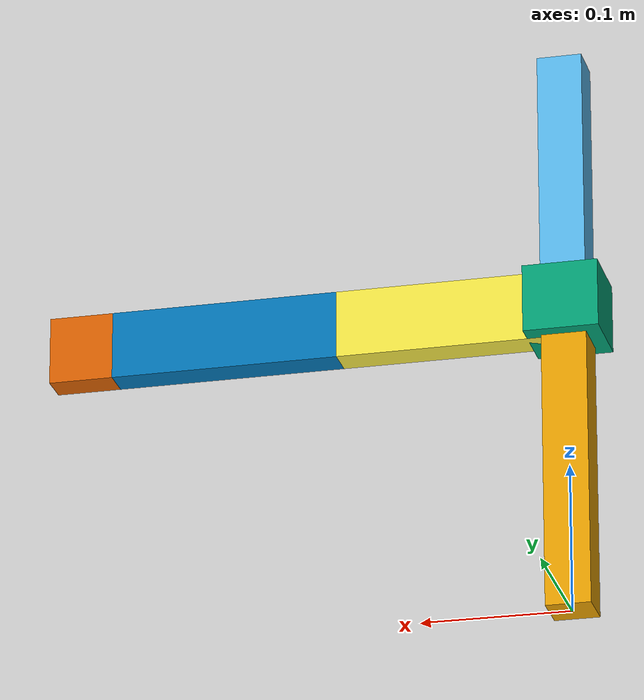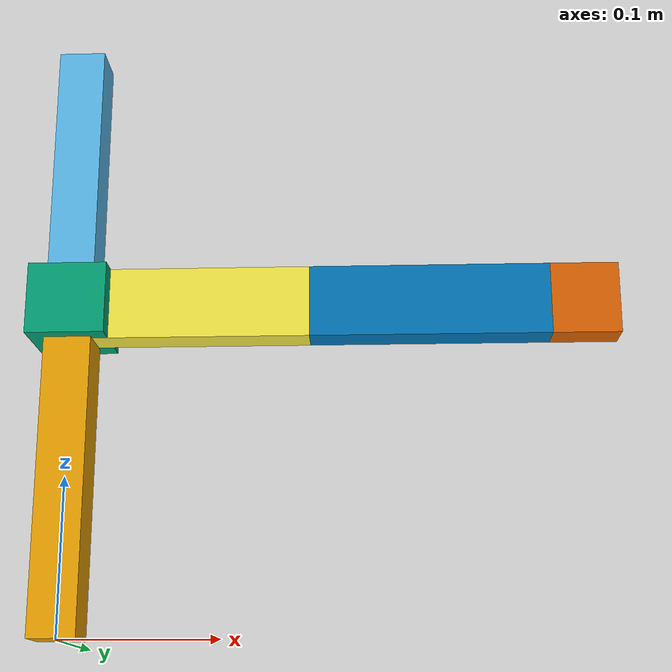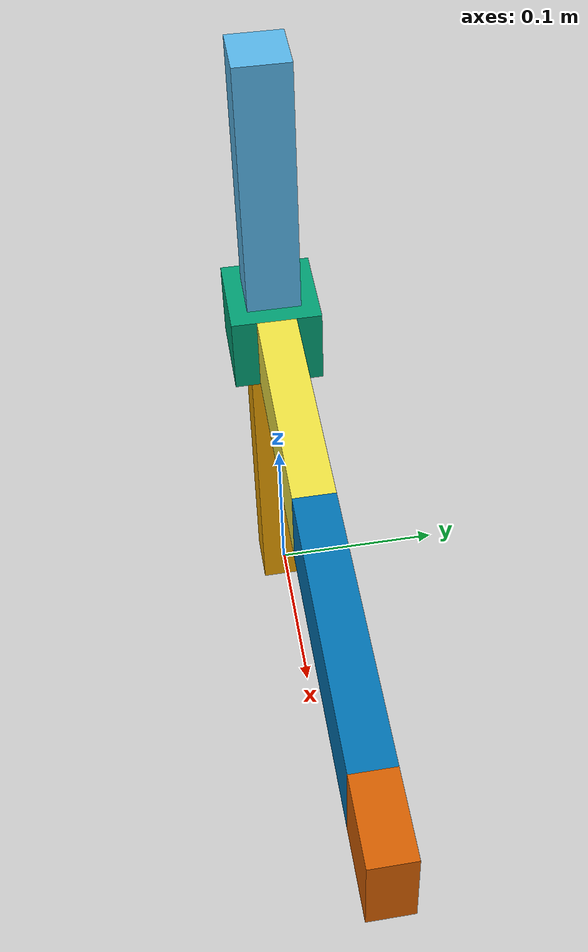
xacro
<?xml version="1.0"?>

<robot name="planar_arm_elevator">

  <!-- BASE -->

  <link name="base_link">

    <visual>
      <geometry>
        <box size="0.03 0.03 0.21"/>
      </geometry>
      <origin xyz="0 0 0.105"/>
    </visual>

    <collision>
      <geometry>
        <box size="0.03 0.03 0.21"/>
      </geometry>
      <origin xyz="0 0 0.105"/>
    </collision>

  </link>

  <!-- FIXED ELEVATOR COLUMN -->

  <link name="column_link">

    <visual>
      <geometry>
        <box size="0.03 0.03 0.176"/>
      </geometry>
      <origin xyz="0 0 0.088"/>
    </visual>

    <collision>
      <geometry>
        <box size="0.03 0.03 0.176"/>
      </geometry>
      <origin xyz="0 0 0.088"/>
    </collision>

  </link>

  <joint name="column_fixed_joint" type="fixed">

    <parent link="base_link"/>
    <child link="column_link"/>

    <!-- top of base -->
    <origin xyz="0 0 0.21"/>

  </joint>

  <!-- MOVING CARRIAGE -->

  <link name="carriage_link">

    <visual>
      <geometry>
        <box size="0.05 0.05 0.046"/>
      </geometry>
    </visual>

    <collision>
      <geometry>
        <box size="0.05 0.05 0.046"/>
      </geometry>
    </collision>

  </link>

  <!-- ELEVATOR -->

  <joint name="lift_joint" type="prismatic">

    <parent link="column_link"/>
    <child link="carriage_link"/>

    <origin xyz="0 0 0"/>

    <axis xyz="0 0 1"/>

    <limit
      lower="0.0"
      upper="0.176"
      effort="50.0"
      velocity="0.10"/>

  </joint>

  <!-- LINK 1 -->

  <link name="link1">

    <visual>
      <geometry>
        <box size="0.153 0.022 0.046"/>
      </geometry>
      <origin xyz="0.0765 0 0"/>
    </visual>

    <collision>
      <geometry>
        <box size="0.153 0.022 0.046"/>
      </geometry>
      <origin xyz="0.0765 0 0"/>
    </collision>

  </link>

  <!-- JOINT 1 -->

  <joint name="joint1" type="revolute">

    <parent link="carriage_link"/>
    <child link="link1"/>

    <origin xyz="0 0 0"/>

    <axis xyz="0 0 1"/>

    <limit
      lower="-2.6"
      upper="2.6"
      effort="5.0"
      velocity="1.0"/>

  </joint>

  <!-- LINK 2 -->

  <link name="link2">

    <visual>
      <geometry>
        <box size="0.153 0.022 0.046"/>
      </geometry>
      <origin xyz="0.0765 0 0"/>
    </visual>

    <collision>
      <geometry>
        <box size="0.153 0.022 0.046"/>
      </geometry>
      <origin xyz="0.0765 0 0"/>
    </collision>

  </link>

  <!-- JOINT 2 -->

  <joint name="joint2" type="revolute">

    <parent link="link1"/>
    <child link="link2"/>

    <origin xyz="0.153 0 0"/>

    <axis xyz="0 0 1"/>

    <limit
      lower="-2.6"
      upper="2.6"
      effort="5.0"
      velocity="1.0"/>

  </joint>

  <!-- TOOL -->

  <link name="tool_link">

    <visual>
      <geometry>
        <box size="0.043 0.022 0.046"/>
      </geometry>
      <origin xyz="0.0215 0 0"/>
    </visual>

    <collision>
      <geometry>
        <box size="0.043 0.022 0.046"/>
      </geometry>
      <origin xyz="0.0215 0 0"/>
    </collision>

  </link>

  <!-- JOINT 3 -->

  <joint name="joint3" type="revolute">

    <parent link="link2"/>
    <child link="tool_link"/>

    <origin xyz="0.153 0 0"/>

    <axis xyz="0 0 1"/>

    <limit
      lower="-2.6"
      upper="2.6"
      effort="5.0"
      velocity="1.0"/>

  </joint>

</robot>
